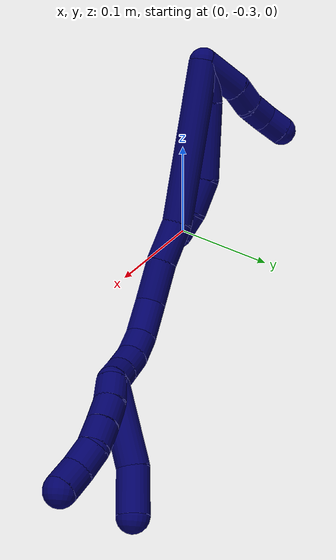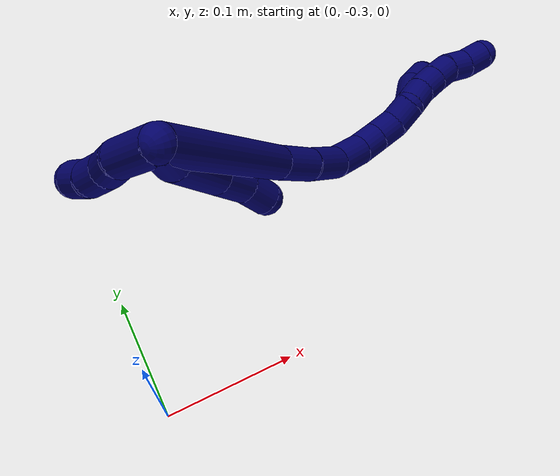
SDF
<sdf version="1.7">
 <world name="default">
  <model name="7">
   <static>0</static>
   <link name="7">
    <collision name="collision-cylinder-e_1_2_8">
     <pose>-0.005928 -0.008834 -0.012969 2.54362 -0.361227 -1.06967</pose>
     <geometry><cylinder><radius>0.0125</radius><length>0.033548</length></cylinder></geometry>
     <surface>
      <friction><ode><mu>1.16</mu><mu2>1.16</mu2><slip1>0</slip1><slip2>0</slip2></ode></friction>
      <contact><ode><kp>1e+06</kp><kd>1</kd><max_vel>0</max_vel><min_depth>0.001</min_depth></ode></contact>
     </surface>
    </collision>
    <visual name="visual-cylinder-e_1_2_8">
     <pose>-0.005928 -0.008834 -0.012969 2.54362 -0.361227 -1.06967</pose>
     <geometry><cylinder><radius>0.0125</radius><length>0.033548</length></cylinder></geometry>
     <material><ambient>0.003922 0 0.403922 1</ambient></material>
    </visual>
    <collision name="collision-cylinder-e_2_8_9">
     <pose>-0.017051 -0.030857 -0.054942 2.7148 -0.161601 -0.715247</pose>
     <geometry><cylinder><radius>0.0125</radius><length>0.064567</length></cylinder></geometry>
     <surface>
      <friction><ode><mu>1.16</mu><mu2>1.16</mu2><slip1>0</slip1><slip2>0</slip2></ode></friction>
      <contact><ode><kp>1e+06</kp><kd>1</kd><max_vel>0</max_vel><min_depth>0.001</min_depth></ode></contact>
     </surface>
    </collision>
    <visual name="visual-cylinder-e_2_8_9">
     <pose>-0.017051 -0.030857 -0.054942 2.7148 -0.161601 -0.715247</pose>
     <geometry><cylinder><radius>0.0125</radius><length>0.064567</length></cylinder></geometry>
     <material><ambient>0.003922 0 0.403922 1</ambient></material>
    </visual>
    <collision name="collision-cylinder-e_3_9_10">
     <pose>-0.019766 -0.050501 -0.096908 2.67959 0.169618 0.693679</pose>
     <geometry><cylinder><radius>0.0125</radius><length>0.029379</length></cylinder></geometry>
     <surface>
      <friction><ode><mu>1.16</mu><mu2>1.16</mu2><slip1>0</slip1><slip2>0</slip2></ode></friction>
      <contact><ode><kp>1e+06</kp><kd>1</kd><max_vel>0</max_vel><min_depth>0.001</min_depth></ode></contact>
     </surface>
    </collision>
    <visual name="visual-cylinder-e_3_9_10">
     <pose>-0.019766 -0.050501 -0.096908 2.67959 0.169618 0.693679</pose>
     <geometry><cylinder><radius>0.0125</radius><length>0.029379</length></cylinder></geometry>
     <material><ambient>0.003922 0 0.403922 1</ambient></material>
    </visual>
    <collision name="collision-cylinder-e_4_10_6">
     <pose>-0.013908 -0.063668 -0.118244 2.46584 0.304878 0.824412</pose>
     <geometry><cylinder><radius>0.0125</radius><length>0.022506</length></cylinder></geometry>
     <surface>
      <friction><ode><mu>1.16</mu><mu2>1.16</mu2><slip1>0</slip1><slip2>0</slip2></ode></friction>
      <contact><ode><kp>1e+06</kp><kd>1</kd><max_vel>0</max_vel><min_depth>0.001</min_depth></ode></contact>
     </surface>
    </collision>
    <visual name="visual-cylinder-e_4_10_6">
     <pose>-0.013908 -0.063668 -0.118244 2.46584 0.304878 0.824412</pose>
     <geometry><cylinder><radius>0.0125</radius><length>0.022506</length></cylinder></geometry>
     <material><ambient>0.003922 0 0.403922 1</ambient></material>
    </visual>
    <collision name="collision-cylinder-e_1_2_11">
     <pose>-0.017768 -0.006925 -0.003887 2.08223 -1.15049 -1.67266</pose>
     <geometry><cylinder><radius>0.0125</radius><length>0.038925</length></cylinder></geometry>
     <surface>
      <friction><ode><mu>1.16</mu><mu2>1.16</mu2><slip1>0</slip1><slip2>0</slip2></ode></friction>
      <contact><ode><kp>1e+06</kp><kd>1</kd><max_vel>0</max_vel><min_depth>0.001</min_depth></ode></contact>
     </surface>
    </collision>
    <visual name="visual-cylinder-e_1_2_11">
     <pose>-0.017768 -0.006925 -0.003887 2.08223 -1.15049 -1.67266</pose>
     <geometry><cylinder><radius>0.0125</radius><length>0.038925</length></cylinder></geometry>
     <material><ambient>0.003922 0 0.403922 1</ambient></material>
    </visual>
    <collision name="collision-cylinder-e_2_11_12">
     <pose>-0.043444 -0.018716 -0.011508 2.22546 -0.911077 -1.56441</pose>
     <geometry><cylinder><radius>0.0125</radius><length>0.020014</length></cylinder></geometry>
     <surface>
      <friction><ode><mu>1.16</mu><mu2>1.16</mu2><slip1>0</slip1><slip2>0</slip2></ode></friction>
      <contact><ode><kp>1e+06</kp><kd>1</kd><max_vel>0</max_vel><min_depth>0.001</min_depth></ode></contact>
     </surface>
    </collision>
    <visual name="visual-cylinder-e_2_11_12">
     <pose>-0.043444 -0.018716 -0.011508 2.22546 -0.911077 -1.56441</pose>
     <geometry><cylinder><radius>0.0125</radius><length>0.020014</length></cylinder></geometry>
     <material><ambient>0.003922 0 0.403922 1</ambient></material>
    </visual>
    <collision name="collision-cylinder-e_3_12_13">
     <pose>-0.060662 -0.028039 -0.016999 1.94624 -1.09556 -1.4614</pose>
     <geometry><cylinder><radius>0.0125</radius><length>0.020943</length></cylinder></geometry>
     <surface>
      <friction><ode><mu>1.16</mu><mu2>1.16</mu2><slip1>0</slip1><slip2>0</slip2></ode></friction>
      <contact><ode><kp>1e+06</kp><kd>1</kd><max_vel>0</max_vel><min_depth>0.001</min_depth></ode></contact>
     </surface>
    </collision>
    <visual name="visual-cylinder-e_3_12_13">
     <pose>-0.060662 -0.028039 -0.016999 1.94624 -1.09556 -1.4614</pose>
     <geometry><cylinder><radius>0.0125</radius><length>0.020943</length></cylinder></geometry>
     <material><ambient>0.003922 0 0.403922 1</ambient></material>
    </visual>
    <collision name="collision-cylinder-e_4_13_5">
     <pose>-0.07932 -0.034665 -0.021776 2.51868 -1.19223 -2.25549</pose>
     <geometry><cylinder><radius>0.0125</radius><length>0.020118</length></cylinder></geometry>
     <surface>
      <friction><ode><mu>1.16</mu><mu2>1.16</mu2><slip1>0</slip1><slip2>0</slip2></ode></friction>
      <contact><ode><kp>1e+06</kp><kd>1</kd><max_vel>0</max_vel><min_depth>0.001</min_depth></ode></contact>
     </surface>
    </collision>
    <visual name="visual-cylinder-e_4_13_5">
     <pose>-0.07932 -0.034665 -0.021776 2.51868 -1.19223 -2.25549</pose>
     <geometry><cylinder><radius>0.0125</radius><length>0.020118</length></cylinder></geometry>
     <material><ambient>0.003922 0 0.403922 1</ambient></material>
    </visual>
    <collision name="collision-cylinder-e_1_2_14">
     <pose>-0.00053 -0.021911 -0.064684 2.81498 -0.007765 -0.047115</pose>
     <geometry><cylinder><radius>0.0125</radius><length>0.136593</length></cylinder></geometry>
     <surface>
      <friction><ode><mu>1.16</mu><mu2>1.16</mu2><slip1>0</slip1><slip2>0</slip2></ode></friction>
      <contact><ode><kp>1e+06</kp><kd>1</kd><max_vel>0</max_vel><min_depth>0.001</min_depth></ode></contact>
     </surface>
    </collision>
    <visual name="visual-cylinder-e_1_2_14">
     <pose>-0.00053 -0.021911 -0.064684 2.81498 -0.007765 -0.047115</pose>
     <geometry><cylinder><radius>0.0125</radius><length>0.136593</length></cylinder></geometry>
     <material><ambient>0.003922 0 0.403922 1</ambient></material>
    </visual>
    <collision name="collision-cylinder-e_2_14_15">
     <pose>0.002883 -0.048415 -0.145656 2.86678 0.228969 1.38738</pose>
     <geometry><cylinder><radius>0.0125</radius><length>0.034752</length></cylinder></geometry>
     <surface>
      <friction><ode><mu>1.16</mu><mu2>1.16</mu2><slip1>0</slip1><slip2>0</slip2></ode></friction>
      <contact><ode><kp>1e+06</kp><kd>1</kd><max_vel>0</max_vel><min_depth>0.001</min_depth></ode></contact>
     </surface>
    </collision>
    <visual name="visual-cylinder-e_2_14_15">
     <pose>0.002883 -0.048415 -0.145656 2.86678 0.228969 1.38738</pose>
     <geometry><cylinder><radius>0.0125</radius><length>0.034752</length></cylinder></geometry>
     <material><ambient>0.003922 0 0.403922 1</ambient></material>
    </visual>
    <collision name="collision-cylinder-e_3_15_16">
     <pose>0.009179 -0.056481 -0.179372 2.94489 0.131574 1.17742</pose>
     <geometry><cylinder><radius>0.0125</radius><length>0.035853</length></cylinder></geometry>
     <surface>
      <friction><ode><mu>1.16</mu><mu2>1.16</mu2><slip1>0</slip1><slip2>0</slip2></ode></friction>
      <contact><ode><kp>1e+06</kp><kd>1</kd><max_vel>0</max_vel><min_depth>0.001</min_depth></ode></contact>
     </surface>
    </collision>
    <visual name="visual-cylinder-e_3_15_16">
     <pose>0.009179 -0.056481 -0.179372 2.94489 0.131574 1.17742</pose>
     <geometry><cylinder><radius>0.0125</radius><length>0.035853</length></cylinder></geometry>
     <material><ambient>0.003922 0 0.403922 1</ambient></material>
    </visual>
    <collision name="collision-cylinder-e_4_16_17">
     <pose>0.014757 -0.058245 -0.211943 -3.02923 0.208648 -2.15576</pose>
     <geometry><cylinder><radius>0.0125</radius><length>0.031153</length></cylinder></geometry>
     <surface>
      <friction><ode><mu>1.16</mu><mu2>1.16</mu2><slip1>0</slip1><slip2>0</slip2></ode></friction>
      <contact><ode><kp>1e+06</kp><kd>1</kd><max_vel>0</max_vel><min_depth>0.001</min_depth></ode></contact>
     </surface>
    </collision>
    <visual name="visual-cylinder-e_4_16_17">
     <pose>0.014757 -0.058245 -0.211943 -3.02923 0.208648 -2.15576</pose>
     <geometry><cylinder><radius>0.0125</radius><length>0.031153</length></cylinder></geometry>
     <material><ambient>0.003922 0 0.403922 1</ambient></material>
    </visual>
    <collision name="collision-cylinder-e_5_17_18">
     <pose>0.021739 -0.052961 -0.23655 -2.78033 0.35539 -1.55405</pose>
     <geometry><cylinder><radius>0.0125</radius><length>0.021582</length></cylinder></geometry>
     <surface>
      <friction><ode><mu>1.16</mu><mu2>1.16</mu2><slip1>0</slip1><slip2>0</slip2></ode></friction>
      <contact><ode><kp>1e+06</kp><kd>1</kd><max_vel>0</max_vel><min_depth>0.001</min_depth></ode></contact>
     </surface>
    </collision>
    <visual name="visual-cylinder-e_5_17_18">
     <pose>0.021739 -0.052961 -0.23655 -2.78033 0.35539 -1.55405</pose>
     <geometry><cylinder><radius>0.0125</radius><length>0.021582</length></cylinder></geometry>
     <material><ambient>0.003922 0 0.403922 1</ambient></material>
    </visual>
    <collision name="collision-cylinder-e_6_18_19">
     <pose>0.030463 -0.044863 -0.253452 -2.59542 0.518744 -1.51679</pose>
     <geometry><cylinder><radius>0.0125</radius><length>0.020048</length></cylinder></geometry>
     <surface>
      <friction><ode><mu>1.16</mu><mu2>1.16</mu2><slip1>0</slip1><slip2>0</slip2></ode></friction>
      <contact><ode><kp>1e+06</kp><kd>1</kd><max_vel>0</max_vel><min_depth>0.001</min_depth></ode></contact>
     </surface>
    </collision>
    <visual name="visual-cylinder-e_6_18_19">
     <pose>0.030463 -0.044863 -0.253452 -2.59542 0.518744 -1.51679</pose>
     <geometry><cylinder><radius>0.0125</radius><length>0.020048</length></cylinder></geometry>
     <material><ambient>0.003922 0 0.403922 1</ambient></material>
    </visual>
    <collision name="collision-cylinder-e_7_19_1">
     <pose>0.03988 -0.033526 -0.266718 -2.27814 0.460417 -0.941164</pose>
     <geometry><cylinder><radius>0.0125</radius><length>0.020018</length></cylinder></geometry>
     <surface>
      <friction><ode><mu>1.16</mu><mu2>1.16</mu2><slip1>0</slip1><slip2>0</slip2></ode></friction>
      <contact><ode><kp>1e+06</kp><kd>1</kd><max_vel>0</max_vel><min_depth>0.001</min_depth></ode></contact>
     </surface>
    </collision>
    <visual name="visual-cylinder-e_7_19_1">
     <pose>0.03988 -0.033526 -0.266718 -2.27814 0.460417 -0.941164</pose>
     <geometry><cylinder><radius>0.0125</radius><length>0.020018</length></cylinder></geometry>
     <material><ambient>0.003922 0 0.403922 1</ambient></material>
    </visual>
    <collision name="collision-cylinder-e_1_1_20">
     <pose>0.03402 -0.024585 -0.303291 -3.07259 -0.322776 2.72378</pose>
     <geometry><cylinder><radius>0.0125</radius><length>0.064995</length></cylinder></geometry>
     <surface>
      <friction><ode><mu>1.16</mu><mu2>1.16</mu2><slip1>0</slip1><slip2>0</slip2></ode></friction>
      <contact><ode><kp>1e+06</kp><kd>1</kd><max_vel>0</max_vel><min_depth>0.001</min_depth></ode></contact>
     </surface>
    </collision>
    <visual name="visual-cylinder-e_1_1_20">
     <pose>0.03402 -0.024585 -0.303291 -3.07259 -0.322776 2.72378</pose>
     <geometry><cylinder><radius>0.0125</radius><length>0.064995</length></cylinder></geometry>
     <material><ambient>0.003922 0 0.403922 1</ambient></material>
    </visual>
    <collision name="collision-cylinder-e_2_20_4">
     <pose>0.022852 -0.019888 -0.351328 -2.9939 -0.049114 0.641118</pose>
     <geometry><cylinder><radius>0.0125</radius><length>0.035005</length></cylinder></geometry>
     <surface>
      <friction><ode><mu>1.16</mu><mu2>1.16</mu2><slip1>0</slip1><slip2>0</slip2></ode></friction>
      <contact><ode><kp>1e+06</kp><kd>1</kd><max_vel>0</max_vel><min_depth>0.001</min_depth></ode></contact>
     </surface>
    </collision>
    <visual name="visual-cylinder-e_2_20_4">
     <pose>0.022852 -0.019888 -0.351328 -2.9939 -0.049114 0.641118</pose>
     <geometry><cylinder><radius>0.0125</radius><length>0.035005</length></cylinder></geometry>
     <material><ambient>0.003922 0 0.403922 1</ambient></material>
    </visual>
    <collision name="collision-cylinder-e_1_1_21">
     <pose>0.045569 -0.02248 -0.281521 -2.70111 0.124449 -0.54287</pose>
     <geometry><cylinder><radius>0.0125</radius><length>0.02</length></cylinder></geometry>
     <surface>
      <friction><ode><mu>1.16</mu><mu2>1.16</mu2><slip1>0</slip1><slip2>0</slip2></ode></friction>
      <contact><ode><kp>1e+06</kp><kd>1</kd><max_vel>0</max_vel><min_depth>0.001</min_depth></ode></contact>
     </surface>
    </collision>
    <visual name="visual-cylinder-e_1_1_21">
     <pose>0.045569 -0.02248 -0.281521 -2.70111 0.124449 -0.54287</pose>
     <geometry><cylinder><radius>0.0125</radius><length>0.02</length></cylinder></geometry>
     <material><ambient>0.003922 0 0.403922 1</ambient></material>
    </visual>
    <collision name="collision-cylinder-e_2_21_22">
     <pose>0.049671 -0.014478 -0.299305 -2.73711 0.29008 -1.23794</pose>
     <geometry><cylinder><radius>0.0125</radius><length>0.02</length></cylinder></geometry>
     <surface>
      <friction><ode><mu>1.16</mu><mu2>1.16</mu2><slip1>0</slip1><slip2>0</slip2></ode></friction>
      <contact><ode><kp>1e+06</kp><kd>1</kd><max_vel>0</max_vel><min_depth>0.001</min_depth></ode></contact>
     </surface>
    </collision>
    <visual name="visual-cylinder-e_2_21_22">
     <pose>0.049671 -0.014478 -0.299305 -2.73711 0.29008 -1.23794</pose>
     <geometry><cylinder><radius>0.0125</radius><length>0.02</length></cylinder></geometry>
     <material><ambient>0.003922 0 0.403922 1</ambient></material>
    </visual>
    <collision name="collision-cylinder-e_3_22_23">
     <pose>0.055655 -0.007329 -0.316993 -2.77805 0.31773 -1.4339</pose>
     <geometry><cylinder><radius>0.0125</radius><length>0.02</length></cylinder></geometry>
     <surface>
      <friction><ode><mu>1.16</mu><mu2>1.16</mu2><slip1>0</slip1><slip2>0</slip2></ode></friction>
      <contact><ode><kp>1e+06</kp><kd>1</kd><max_vel>0</max_vel><min_depth>0.001</min_depth></ode></contact>
     </surface>
    </collision>
    <visual name="visual-cylinder-e_3_22_23">
     <pose>0.055655 -0.007329 -0.316993 -2.77805 0.31773 -1.4339</pose>
     <geometry><cylinder><radius>0.0125</radius><length>0.02</length></cylinder></geometry>
     <material><ambient>0.003922 0 0.403922 1</ambient></material>
    </visual>
    <collision name="collision-cylinder-e_4_23_24">
     <pose>0.063902 -0.003039 -0.334411 -3.03526 0.537865 -2.76011</pose>
     <geometry><cylinder><radius>0.0125</radius><length>0.02</length></cylinder></geometry>
     <surface>
      <friction><ode><mu>1.16</mu><mu2>1.16</mu2><slip1>0</slip1><slip2>0</slip2></ode></friction>
      <contact><ode><kp>1e+06</kp><kd>1</kd><max_vel>0</max_vel><min_depth>0.001</min_depth></ode></contact>
     </surface>
    </collision>
    <visual name="visual-cylinder-e_4_23_24">
     <pose>0.063902 -0.003039 -0.334411 -3.03526 0.537865 -2.76011</pose>
     <geometry><cylinder><radius>0.0125</radius><length>0.02</length></cylinder></geometry>
     <material><ambient>0.003922 0 0.403922 1</ambient></material>
    </visual>
    <collision name="collision-cylinder-e_5_24_3">
     <pose>0.074646 0.001366 -0.350447 -2.7055 0.596949 -1.89334</pose>
     <geometry><cylinder><radius>0.0125</radius><length>0.02</length></cylinder></geometry>
     <surface>
      <friction><ode><mu>1.16</mu><mu2>1.16</mu2><slip1>0</slip1><slip2>0</slip2></ode></friction>
      <contact><ode><kp>1e+06</kp><kd>1</kd><max_vel>0</max_vel><min_depth>0.001</min_depth></ode></contact>
     </surface>
    </collision>
    <visual name="visual-cylinder-e_5_24_3">
     <pose>0.074646 0.001366 -0.350447 -2.7055 0.596949 -1.89334</pose>
     <geometry><cylinder><radius>0.0125</radius><length>0.02</length></cylinder></geometry>
     <material><ambient>0.003922 0 0.403922 1</ambient></material>
    </visual>
    <collision name="collision-sphere-3">
     <pose>0.080268 0.004859 -0.357943 0 -0 0</pose>
     <geometry><sphere><radius>0.0125</radius></sphere></geometry>
     <surface>
      <friction><ode><mu>1.16</mu><mu2>1.16</mu2><slip1>0</slip1><slip2>0</slip2></ode></friction>
      <contact><ode><kp>1e+06</kp><kd>1</kd><max_vel>0</max_vel><min_depth>0.001</min_depth></ode></contact>
     </surface>
    </collision>
    <visual name="visual-sphere-3">
     <pose>0.080268 0.004859 -0.357943 0 -0 0</pose>
     <geometry><sphere><radius>0.0125</radius></sphere></geometry>
     <material><ambient>0.003922 0 0.403922 1</ambient></material>
    </visual>
    <collision name="collision-sphere-24">
     <pose>0.069025 -0.002128 -0.34295 0 -0 0</pose>
     <geometry><sphere><radius>0.0125</radius></sphere></geometry>
     <surface>
      <friction><ode><mu>1.16</mu><mu2>1.16</mu2><slip1>0</slip1><slip2>0</slip2></ode></friction>
      <contact><ode><kp>1e+06</kp><kd>1</kd><max_vel>0</max_vel><min_depth>0.001</min_depth></ode></contact>
     </surface>
    </collision>
    <visual name="visual-sphere-24">
     <pose>0.069025 -0.002128 -0.34295 0 -0 0</pose>
     <geometry><sphere><radius>0.0125</radius></sphere></geometry>
     <material><ambient>0.003922 0 0.403922 1</ambient></material>
    </visual>
    <collision name="collision-sphere-23">
     <pose>0.058779 -0.003951 -0.325871 0 -0 0</pose>
     <geometry><sphere><radius>0.0125</radius></sphere></geometry>
     <surface>
      <friction><ode><mu>1.16</mu><mu2>1.16</mu2><slip1>0</slip1><slip2>0</slip2></ode></friction>
      <contact><ode><kp>1e+06</kp><kd>1</kd><max_vel>0</max_vel><min_depth>0.001</min_depth></ode></contact>
     </surface>
    </collision>
    <visual name="visual-sphere-23">
     <pose>0.058779 -0.003951 -0.325871 0 -0 0</pose>
     <geometry><sphere><radius>0.0125</radius></sphere></geometry>
     <material><ambient>0.003922 0 0.403922 1</ambient></material>
    </visual>
    <collision name="collision-sphere-22">
     <pose>0.052531 -0.010707 -0.308114 0 -0 0</pose>
     <geometry><sphere><radius>0.0125</radius></sphere></geometry>
     <surface>
      <friction><ode><mu>1.16</mu><mu2>1.16</mu2><slip1>0</slip1><slip2>0</slip2></ode></friction>
      <contact><ode><kp>1e+06</kp><kd>1</kd><max_vel>0</max_vel><min_depth>0.001</min_depth></ode></contact>
     </surface>
    </collision>
    <visual name="visual-sphere-22">
     <pose>0.052531 -0.010707 -0.308114 0 -0 0</pose>
     <geometry><sphere><radius>0.0125</radius></sphere></geometry>
     <material><ambient>0.003922 0 0.403922 1</ambient></material>
    </visual>
    <collision name="collision-sphere-21">
     <pose>0.04681 -0.018249 -0.290496 0 -0 0</pose>
     <geometry><sphere><radius>0.0125</radius></sphere></geometry>
     <surface>
      <friction><ode><mu>1.16</mu><mu2>1.16</mu2><slip1>0</slip1><slip2>0</slip2></ode></friction>
      <contact><ode><kp>1e+06</kp><kd>1</kd><max_vel>0</max_vel><min_depth>0.001</min_depth></ode></contact>
     </surface>
    </collision>
    <visual name="visual-sphere-21">
     <pose>0.04681 -0.018249 -0.290496 0 -0 0</pose>
     <geometry><sphere><radius>0.0125</radius></sphere></geometry>
     <material><ambient>0.003922 0 0.403922 1</ambient></material>
    </visual>
    <collision name="collision-sphere-4">
     <pose>0.021993 -0.017316 -0.368619 0 -0 0</pose>
     <geometry><sphere><radius>0.0125</radius></sphere></geometry>
     <surface>
      <friction><ode><mu>1.16</mu><mu2>1.16</mu2><slip1>0</slip1><slip2>0</slip2></ode></friction>
      <contact><ode><kp>1e+06</kp><kd>1</kd><max_vel>0</max_vel><min_depth>0.001</min_depth></ode></contact>
     </surface>
    </collision>
    <visual name="visual-sphere-4">
     <pose>0.021993 -0.017316 -0.368619 0 -0 0</pose>
     <geometry><sphere><radius>0.0125</radius></sphere></geometry>
     <material><ambient>0.003922 0 0.403922 1</ambient></material>
    </visual>
    <collision name="collision-sphere-20">
     <pose>0.023711 -0.022461 -0.334037 0 -0 0</pose>
     <geometry><sphere><radius>0.0125</radius></sphere></geometry>
     <surface>
      <friction><ode><mu>1.16</mu><mu2>1.16</mu2><slip1>0</slip1><slip2>0</slip2></ode></friction>
      <contact><ode><kp>1e+06</kp><kd>1</kd><max_vel>0</max_vel><min_depth>0.001</min_depth></ode></contact>
     </surface>
    </collision>
    <visual name="visual-sphere-20">
     <pose>0.023711 -0.022461 -0.334037 0 -0 0</pose>
     <geometry><sphere><radius>0.0125</radius></sphere></geometry>
     <material><ambient>0.003922 0 0.403922 1</ambient></material>
    </visual>
    <collision name="collision-sphere-11">
     <pose>-0.035537 -0.013851 -0.007774 0 -0 0</pose>
     <geometry><sphere><radius>0.0125</radius></sphere></geometry>
     <surface>
      <friction><ode><mu>1.16</mu><mu2>1.16</mu2><slip1>0</slip1><slip2>0</slip2></ode></friction>
      <contact><ode><kp>1e+06</kp><kd>1</kd><max_vel>0</max_vel><min_depth>0.001</min_depth></ode></contact>
     </surface>
    </collision>
    <visual name="visual-sphere-11">
     <pose>-0.035537 -0.013851 -0.007774 0 -0 0</pose>
     <geometry><sphere><radius>0.0125</radius></sphere></geometry>
     <material><ambient>0.003922 0 0.403922 1</ambient></material>
    </visual>
    <collision name="collision-sphere-6">
     <pose>-0.01053 -0.070382 -0.126619 0 -0 0</pose>
     <geometry><sphere><radius>0.0125</radius></sphere></geometry>
     <surface>
      <friction><ode><mu>1.16</mu><mu2>1.16</mu2><slip1>0</slip1><slip2>0</slip2></ode></friction>
      <contact><ode><kp>1e+06</kp><kd>1</kd><max_vel>0</max_vel><min_depth>0.001</min_depth></ode></contact>
     </surface>
    </collision>
    <visual name="visual-sphere-6">
     <pose>-0.01053 -0.070382 -0.126619 0 -0 0</pose>
     <geometry><sphere><radius>0.0125</radius></sphere></geometry>
     <material><ambient>0.003922 0 0.403922 1</ambient></material>
    </visual>
    <collision name="collision-sphere-10">
     <pose>-0.017286 -0.056954 -0.109869 0 -0 0</pose>
     <geometry><sphere><radius>0.0125</radius></sphere></geometry>
     <surface>
      <friction><ode><mu>1.16</mu><mu2>1.16</mu2><slip1>0</slip1><slip2>0</slip2></ode></friction>
      <contact><ode><kp>1e+06</kp><kd>1</kd><max_vel>0</max_vel><min_depth>0.001</min_depth></ode></contact>
     </surface>
    </collision>
    <visual name="visual-sphere-10">
     <pose>-0.017286 -0.056954 -0.109869 0 -0 0</pose>
     <geometry><sphere><radius>0.0125</radius></sphere></geometry>
     <material><ambient>0.003922 0 0.403922 1</ambient></material>
    </visual>
    <collision name="collision-sphere-9">
     <pose>-0.022245 -0.044047 -0.083947 0 -0 0</pose>
     <geometry><sphere><radius>0.0125</radius></sphere></geometry>
     <surface>
      <friction><ode><mu>1.16</mu><mu2>1.16</mu2><slip1>0</slip1><slip2>0</slip2></ode></friction>
      <contact><ode><kp>1e+06</kp><kd>1</kd><max_vel>0</max_vel><min_depth>0.001</min_depth></ode></contact>
     </surface>
    </collision>
    <visual name="visual-sphere-9">
     <pose>-0.022245 -0.044047 -0.083947 0 -0 0</pose>
     <geometry><sphere><radius>0.0125</radius></sphere></geometry>
     <material><ambient>0.003922 0 0.403922 1</ambient></material>
    </visual>
    <collision name="collision-sphere-2">
     <geometry><sphere><radius>0.0125</radius></sphere></geometry>
     <surface>
      <friction><ode><mu>1.16</mu><mu2>1.16</mu2><slip1>0</slip1><slip2>0</slip2></ode></friction>
      <contact><ode><kp>1e+06</kp><kd>1</kd><max_vel>0</max_vel><min_depth>0.001</min_depth></ode></contact>
     </surface>
    </collision>
    <visual name="visual-sphere-2">
     <geometry><sphere><radius>0.0125</radius></sphere></geometry>
     <material><ambient>0.003922 0 0.403922 1</ambient></material>
    </visual>
    <collision name="collision-sphere-19">
     <pose>0.035433 -0.040342 -0.260891 0 -0 0</pose>
     <geometry><sphere><radius>0.0125</radius></sphere></geometry>
     <surface>
      <friction><ode><mu>1.16</mu><mu2>1.16</mu2><slip1>0</slip1><slip2>0</slip2></ode></friction>
      <contact><ode><kp>1e+06</kp><kd>1</kd><max_vel>0</max_vel><min_depth>0.001</min_depth></ode></contact>
     </surface>
    </collision>
    <visual name="visual-sphere-19">
     <pose>0.035433 -0.040342 -0.260891 0 -0 0</pose>
     <geometry><sphere><radius>0.0125</radius></sphere></geometry>
     <material><ambient>0.003922 0 0.403922 1</ambient></material>
    </visual>
    <collision name="collision-sphere-8">
     <pose>-0.011857 -0.017668 -0.025937 0 -0 0</pose>
     <geometry><sphere><radius>0.0125</radius></sphere></geometry>
     <surface>
      <friction><ode><mu>1.16</mu><mu2>1.16</mu2><slip1>0</slip1><slip2>0</slip2></ode></friction>
      <contact><ode><kp>1e+06</kp><kd>1</kd><max_vel>0</max_vel><min_depth>0.001</min_depth></ode></contact>
     </surface>
    </collision>
    <visual name="visual-sphere-8">
     <pose>-0.011857 -0.017668 -0.025937 0 -0 0</pose>
     <geometry><sphere><radius>0.0125</radius></sphere></geometry>
     <material><ambient>0.003922 0 0.403922 1</ambient></material>
    </visual>
    <collision name="collision-sphere-12">
     <pose>-0.051352 -0.023581 -0.015243 0 -0 0</pose>
     <geometry><sphere><radius>0.0125</radius></sphere></geometry>
     <surface>
      <friction><ode><mu>1.16</mu><mu2>1.16</mu2><slip1>0</slip1><slip2>0</slip2></ode></friction>
      <contact><ode><kp>1e+06</kp><kd>1</kd><max_vel>0</max_vel><min_depth>0.001</min_depth></ode></contact>
     </surface>
    </collision>
    <visual name="visual-sphere-12">
     <pose>-0.051352 -0.023581 -0.015243 0 -0 0</pose>
     <geometry><sphere><radius>0.0125</radius></sphere></geometry>
     <material><ambient>0.003922 0 0.403922 1</ambient></material>
    </visual>
    <collision name="collision-sphere-13">
     <pose>-0.069973 -0.032496 -0.018756 0 -0 0</pose>
     <geometry><sphere><radius>0.0125</radius></sphere></geometry>
     <surface>
      <friction><ode><mu>1.16</mu><mu2>1.16</mu2><slip1>0</slip1><slip2>0</slip2></ode></friction>
      <contact><ode><kp>1e+06</kp><kd>1</kd><max_vel>0</max_vel><min_depth>0.001</min_depth></ode></contact>
     </surface>
    </collision>
    <visual name="visual-sphere-13">
     <pose>-0.069973 -0.032496 -0.018756 0 -0 0</pose>
     <geometry><sphere><radius>0.0125</radius></sphere></geometry>
     <material><ambient>0.003922 0 0.403922 1</ambient></material>
    </visual>
    <collision name="collision-sphere-5">
     <pose>-0.088667 -0.036834 -0.024795 0 -0 0</pose>
     <geometry><sphere><radius>0.0125</radius></sphere></geometry>
     <surface>
      <friction><ode><mu>1.16</mu><mu2>1.16</mu2><slip1>0</slip1><slip2>0</slip2></ode></friction>
      <contact><ode><kp>1e+06</kp><kd>1</kd><max_vel>0</max_vel><min_depth>0.001</min_depth></ode></contact>
     </surface>
    </collision>
    <visual name="visual-sphere-5">
     <pose>-0.088667 -0.036834 -0.024795 0 -0 0</pose>
     <geometry><sphere><radius>0.0125</radius></sphere></geometry>
     <material><ambient>0.003922 0 0.403922 1</ambient></material>
    </visual>
    <collision name="collision-sphere-14">
     <pose>-0.001061 -0.043823 -0.129368 0 -0 0</pose>
     <geometry><sphere><radius>0.0125</radius></sphere></geometry>
     <surface>
      <friction><ode><mu>1.16</mu><mu2>1.16</mu2><slip1>0</slip1><slip2>0</slip2></ode></friction>
      <contact><ode><kp>1e+06</kp><kd>1</kd><max_vel>0</max_vel><min_depth>0.001</min_depth></ode></contact>
     </surface>
    </collision>
    <visual name="visual-sphere-14">
     <pose>-0.001061 -0.043823 -0.129368 0 -0 0</pose>
     <geometry><sphere><radius>0.0125</radius></sphere></geometry>
     <material><ambient>0.003922 0 0.403922 1</ambient></material>
    </visual>
    <collision name="collision-sphere-15">
     <pose>0.006827 -0.053007 -0.161943 0 -0 0</pose>
     <geometry><sphere><radius>0.0125</radius></sphere></geometry>
     <surface>
      <friction><ode><mu>1.16</mu><mu2>1.16</mu2><slip1>0</slip1><slip2>0</slip2></ode></friction>
      <contact><ode><kp>1e+06</kp><kd>1</kd><max_vel>0</max_vel><min_depth>0.001</min_depth></ode></contact>
     </surface>
    </collision>
    <visual name="visual-sphere-15">
     <pose>0.006827 -0.053007 -0.161943 0 -0 0</pose>
     <geometry><sphere><radius>0.0125</radius></sphere></geometry>
     <material><ambient>0.003922 0 0.403922 1</ambient></material>
    </visual>
    <collision name="collision-sphere-16">
     <pose>0.011531 -0.059954 -0.196801 0 -0 0</pose>
     <geometry><sphere><radius>0.0125</radius></sphere></geometry>
     <surface>
      <friction><ode><mu>1.16</mu><mu2>1.16</mu2><slip1>0</slip1><slip2>0</slip2></ode></friction>
      <contact><ode><kp>1e+06</kp><kd>1</kd><max_vel>0</max_vel><min_depth>0.001</min_depth></ode></contact>
     </surface>
    </collision>
    <visual name="visual-sphere-16">
     <pose>0.011531 -0.059954 -0.196801 0 -0 0</pose>
     <geometry><sphere><radius>0.0125</radius></sphere></geometry>
     <material><ambient>0.003922 0 0.403922 1</ambient></material>
    </visual>
    <collision name="collision-sphere-17">
     <pose>0.017984 -0.056537 -0.227086 0 -0 0</pose>
     <geometry><sphere><radius>0.0125</radius></sphere></geometry>
     <surface>
      <friction><ode><mu>1.16</mu><mu2>1.16</mu2><slip1>0</slip1><slip2>0</slip2></ode></friction>
      <contact><ode><kp>1e+06</kp><kd>1</kd><max_vel>0</max_vel><min_depth>0.001</min_depth></ode></contact>
     </surface>
    </collision>
    <visual name="visual-sphere-17">
     <pose>0.017984 -0.056537 -0.227086 0 -0 0</pose>
     <geometry><sphere><radius>0.0125</radius></sphere></geometry>
     <material><ambient>0.003922 0 0.403922 1</ambient></material>
    </visual>
    <collision name="collision-sphere-18">
     <pose>0.025493 -0.049385 -0.246013 0 -0 0</pose>
     <geometry><sphere><radius>0.0125</radius></sphere></geometry>
     <surface>
      <friction><ode><mu>1.16</mu><mu2>1.16</mu2><slip1>0</slip1><slip2>0</slip2></ode></friction>
      <contact><ode><kp>1e+06</kp><kd>1</kd><max_vel>0</max_vel><min_depth>0.001</min_depth></ode></contact>
     </surface>
    </collision>
    <visual name="visual-sphere-18">
     <pose>0.025493 -0.049385 -0.246013 0 -0 0</pose>
     <geometry><sphere><radius>0.0125</radius></sphere></geometry>
     <material><ambient>0.003922 0 0.403922 1</ambient></material>
    </visual>
    <collision name="collision-sphere-1">
     <pose>0.044328 -0.02671 -0.272545 0 -0 0</pose>
     <geometry><sphere><radius>0.0125</radius></sphere></geometry>
     <surface>
      <friction><ode><mu>1.16</mu><mu2>1.16</mu2><slip1>0</slip1><slip2>0</slip2></ode></friction>
      <contact><ode><kp>1e+06</kp><kd>1</kd><max_vel>0</max_vel><min_depth>0.001</min_depth></ode></contact>
     </surface>
    </collision>
    <visual name="visual-sphere-1">
     <pose>0.044328 -0.02671 -0.272545 0 -0 0</pose>
     <geometry><sphere><radius>0.0125</radius></sphere></geometry>
     <material><ambient>0.003922 0 0.403922 1</ambient></material>
    </visual>
    <inertial>
     <pose>0.006498 -0.028768 -0.155716 0 -0 0</pose>
     <mass>0.75</mass>
     <inertia>
      <ixx>0.000201</ixx>
      <ixy>0</ixy>
      <ixz>0</ixz>
      <iyy>-0.000225</iyy>
      <iyz>0</iyz>
      <izz>5.4e-05</izz>
     </inertia>
    </inertial>
   </link>
   <pose>0.057695 -0.238339 0.225396 0.943126 -0.308794 -0.833943</pose>
  </model>
 </world>
</sdf>
